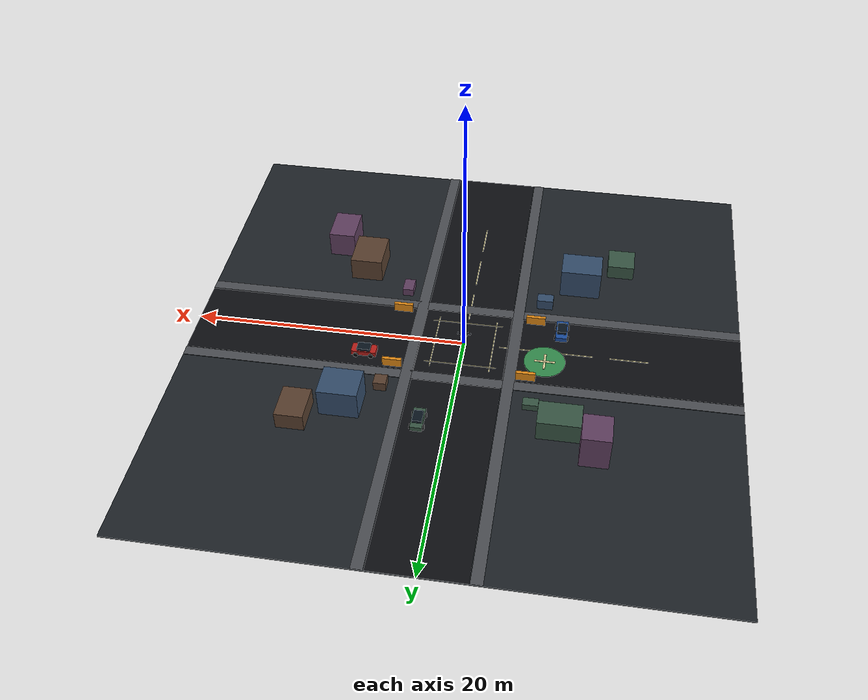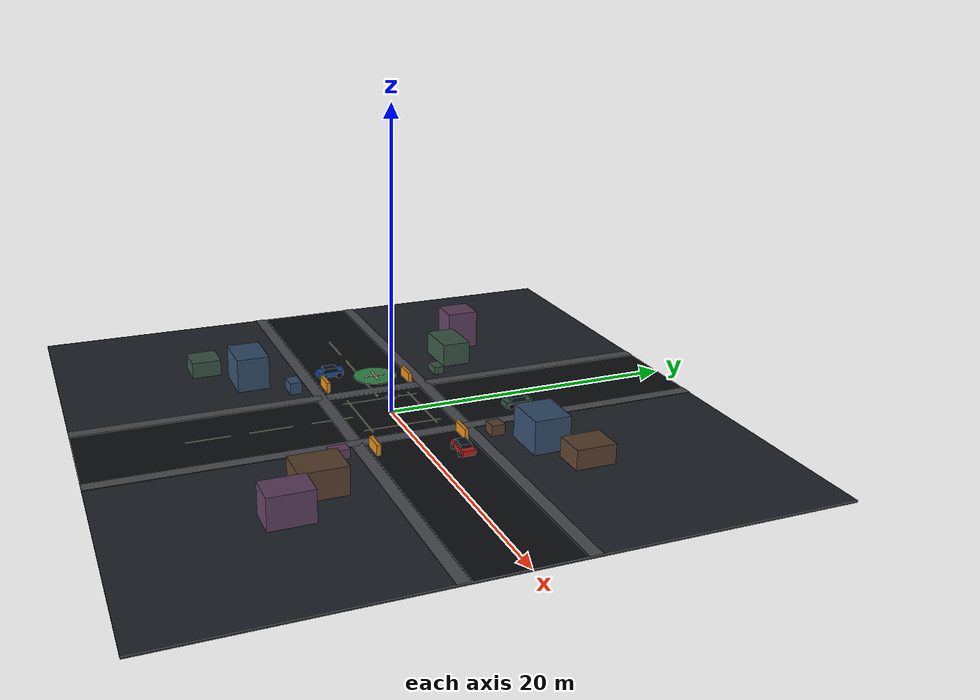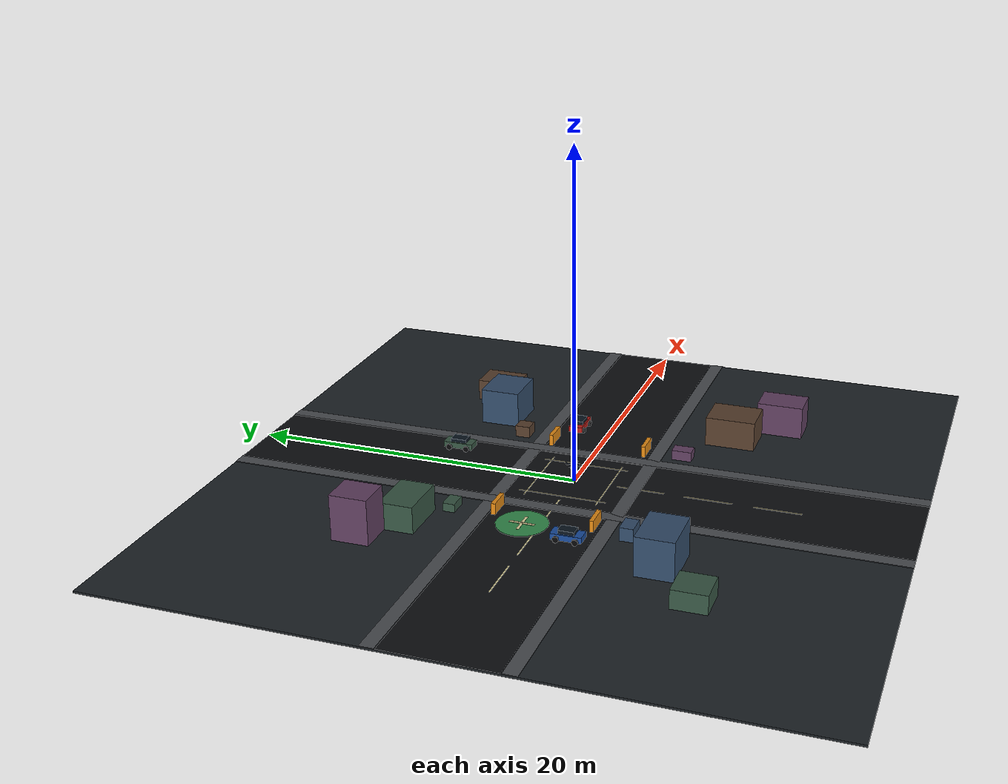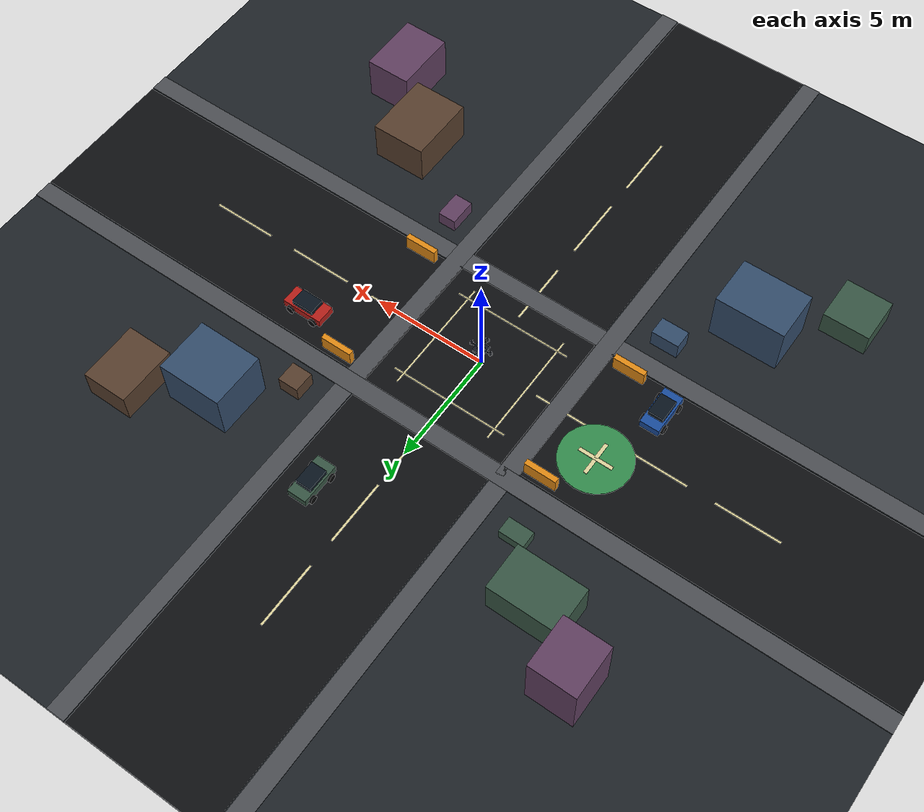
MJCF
<mujoco model="quaternion_quadrotor">

    <!-- ============================================================
         PHYSICS: ORIGINAL SETTINGS PRESERVED
         ============================================================ -->
    <option
        timestep="0.0002"
        gravity="0 0 0"
    />

    <!-- Visual-only materials and lighting. These do not affect physics. -->
    <asset>
        <!-- Drone -->
        <material name="drone_body_mat" rgba="0.08 0.10 0.13 1" />
        <material name="drone_panel_mat" rgba="0.18 0.20 0.24 1" />
        <material name="drone_metal_mat" rgba="0.32 0.35 0.40 1" />
        <material name="drone_glass_mat" rgba="0.03 0.12 0.18 1" />
        <material name="drone_led_mat" rgba="0.10 0.75 1.00 1" emission="0.6" />
        <material name="prop_mat" rgba="0.03 0.04 0.05 0.75" />

        <!-- Environment -->
        <material name="ground_mat" rgba="0.12 0.14 0.16 1" />
        <material name="road_mat" rgba="0.055 0.060 0.070 1" />
        <material name="lane_mat" rgba="0.88 0.84 0.62 1" />
        <material name="sidewalk_mat" rgba="0.30 0.31 0.33 1" />
        <material name="block_a_mat" rgba="0.20 0.30 0.42 1" />
        <material name="block_b_mat" rgba="0.35 0.25 0.18 1" />
        <material name="block_c_mat" rgba="0.22 0.34 0.27 1" />
        <material name="block_d_mat" rgba="0.38 0.25 0.38 1" />
        <material name="car_body_mat" rgba="0.72 0.12 0.10 1" />
        <material name="car_body_2_mat" rgba="0.10 0.30 0.62 1" />
        <material name="car_glass_mat" rgba="0.04 0.08 0.12 1" />
        <material name="wheel_mat" rgba="0.025 0.025 0.028 1" />
        <material name="pad_mat" rgba="0.20 0.55 0.30 1" />
        <material name="barrier_mat" rgba="0.90 0.55 0.08 1" />
    </asset>

    <!-- Rendering only: no effect on dynamics/controller. -->
    <visual>
        <headlight diffuse="0.75 0.78 0.85" ambient="0.30 0.30 0.32" specular="0.35 0.35 0.35" />
        <map znear="0.01" zfar="100" />
    </visual>

    <worldbody>

        <!-- ========================================================
             LIGHTING
             ======================================================== -->
        <light
            name="key_light"
            pos="4 -6 10"
            dir="-0.25 0.35 -1"
            diffuse="0.90 0.90 0.90"
            specular="0.25 0.25 0.25"
        />

        <light
            name="fill_light"
            pos="-6 3 7"
            dir="0.35 -0.20 -1"
            diffuse="0.45 0.50 0.60"
            specular="0.10 0.10 0.10"
        />

        <!-- Large ground slab -->
        <geom
            name="environment_ground"
            type="box"
            pos="0 0 -0.06"
            size="20 20 0.06"
            material="ground_mat"
            contype="0"
            conaffinity="0"
        />

        <!-- Four-way intersection: two perpendicular road slabs -->
        <geom
            name="road_horizontal"
            type="box"
            pos="0 0 0.005"
            size="20 3.2 0.015"
            material="road_mat"
            contype="0"
            conaffinity="0"
        />

        <geom
            name="road_vertical"
            type="box"
            pos="0 0 0.006"
            size="3.2 20 0.015"
            material="road_mat"
            contype="0"
            conaffinity="0"
        />

        <!-- Road edge / sidewalk strips -->
        <geom name="sidewalk_n" type="box" pos="0 3.65 0.02" size="20 0.40 0.02" material="sidewalk_mat" contype="0" conaffinity="0" />
        <geom name="sidewalk_s" type="box" pos="0 -3.65 0.02" size="20 0.40 0.02" material="sidewalk_mat" contype="0" conaffinity="0" />
        <geom name="sidewalk_e" type="box" pos="3.65 0 0.02" size="0.40 20 0.02" material="sidewalk_mat" contype="0" conaffinity="0" />
        <geom name="sidewalk_w" type="box" pos="-3.65 0 0.02" size="0.40 20 0.02" material="sidewalk_mat" contype="0" conaffinity="0" />

        <!-- Dashed center markings on the four road approaches -->
        <geom name="lane_h1" type="box" pos="-12 0 0.026" size="1.4 0.045 0.006" material="lane_mat" contype="0" conaffinity="0" />
        <geom name="lane_h2" type="box" pos="-8 0 0.026" size="1.4 0.045 0.006" material="lane_mat" contype="0" conaffinity="0" />
        <geom name="lane_h3" type="box" pos="-4 0 0.026" size="1.4 0.045 0.006" material="lane_mat" contype="0" conaffinity="0" />
        <geom name="lane_h4" type="box" pos="4 0 0.026" size="1.4 0.045 0.006" material="lane_mat" contype="0" conaffinity="0" />
        <geom name="lane_h5" type="box" pos="8 0 0.026" size="1.4 0.045 0.006" material="lane_mat" contype="0" conaffinity="0" />
        <geom name="lane_h6" type="box" pos="12 0 0.026" size="1.4 0.045 0.006" material="lane_mat" contype="0" conaffinity="0" />

        <geom name="lane_v1" type="box" pos="0 -12 0.026" size="0.045 1.4 0.006" material="lane_mat" contype="0" conaffinity="0" />
        <geom name="lane_v2" type="box" pos="0 -8 0.026" size="0.045 1.4 0.006" material="lane_mat" contype="0" conaffinity="0" />
        <geom name="lane_v3" type="box" pos="0 -4 0.026" size="0.045 1.4 0.006" material="lane_mat" contype="0" conaffinity="0" />
        <geom name="lane_v4" type="box" pos="0 4 0.026" size="0.045 1.4 0.006" material="lane_mat" contype="0" conaffinity="0" />
        <geom name="lane_v5" type="box" pos="0 8 0.026" size="0.045 1.4 0.006" material="lane_mat" contype="0" conaffinity="0" />
        <geom name="lane_v6" type="box" pos="0 12 0.026" size="0.045 1.4 0.006" material="lane_mat" contype="0" conaffinity="0" />

        <!-- Intersection stop lines -->
        <geom name="stop_n" type="box" pos="0 2.15 0.028" size="2.6 0.035 0.007" material="lane_mat" contype="0" conaffinity="0" />
        <geom name="stop_s" type="box" pos="0 -2.15 0.028" size="2.6 0.035 0.007" material="lane_mat" contype="0" conaffinity="0" />
        <geom name="stop_e" type="box" pos="2.15 0 0.028" size="0.035 2.6 0.007" material="lane_mat" contype="0" conaffinity="0" />
        <geom name="stop_w" type="box" pos="-2.15 0 0.028" size="0.035 2.6 0.007" material="lane_mat" contype="0" conaffinity="0" />

        <!-- ========================================================
             SCATTERED LOW-POLY BLOCKS / BUILDINGS
             ======================================================== -->
        <geom name="block_1" type="box" pos="7.5 7.0 1.10" size="1.4 1.2 1.10" material="block_a_mat" contype="0" conaffinity="0" />
        <geom name="block_2" type="box" pos="10.5 8.5 0.65" size="1.0 1.3 0.65" material="block_b_mat" contype="0" conaffinity="0" />
        <geom name="block_3" type="box" pos="-7.5 7.2 0.80" size="1.5 1.0 0.80" material="block_c_mat" contype="0" conaffinity="0" />
        <geom name="block_4" type="box" pos="-10.0 9.0 1.35" size="1.0 1.1 1.35" material="block_d_mat" contype="0" conaffinity="0" />
        <geom name="block_5" type="box" pos="8.5 -7.5 0.90" size="1.2 1.5 0.90" material="block_b_mat" contype="0" conaffinity="0" />
        <geom name="block_6" type="box" pos="-8.0 -7.5 1.15" size="1.5 1.1 1.15" material="block_a_mat" contype="0" conaffinity="0" />
        <geom name="block_7" type="box" pos="-11.0 -10.0 0.55" size="1.0 1.0 0.55" material="block_c_mat" contype="0" conaffinity="0" />
        <geom name="block_8" type="box" pos="11.0 -10.0 1.00" size="1.0 1.4 1.00" material="block_d_mat" contype="0" conaffinity="0" />

        <!-- Smaller scattered obstacles / crates -->
        <geom name="crate_1" type="box" pos="5.2 5.0 0.35" size="0.45 0.45 0.35" material="block_b_mat" contype="0" conaffinity="0" />
        <geom name="crate_2" type="box" pos="-5.4 5.4 0.25" size="0.55 0.35 0.25" material="block_c_mat" contype="0" conaffinity="0" />
        <geom name="crate_3" type="box" pos="5.0 -5.2 0.30" size="0.40 0.60 0.30" material="block_d_mat" contype="0" conaffinity="0" />
        <geom name="crate_4" type="box" pos="-5.5 -5.0 0.40" size="0.60 0.40 0.40" material="block_a_mat" contype="0" conaffinity="0" />

        <!-- ========================================================
             STATIC LOW-POLY CARS
             ======================================================== -->

        <!-- Car 1: north-east approach -->
        <body name="car_1_visual" pos="7.0 2.0 0.34">
            <geom name="car1_body" type="box" size="0.90 0.42 0.18" material="car_body_mat" contype="0" conaffinity="0" />
            <geom name="car1_cabin" type="box" pos="0 0 0.24" size="0.48 0.34 0.16" material="car_glass_mat" contype="0" conaffinity="0" />
            <geom name="car1_wheel_fl" type="cylinder" pos="-0.55 -0.45 -0.12" quat="0.7071 0.7071 0 0" size="0.18 0.07" material="wheel_mat" contype="0" conaffinity="0" />
            <geom name="car1_wheel_fr" type="cylinder" pos="0.55 -0.45 -0.12" quat="0.7071 0.7071 0 0" size="0.18 0.07" material="wheel_mat" contype="0" conaffinity="0" />
            <geom name="car1_wheel_rl" type="cylinder" pos="-0.55 0.45 -0.12" quat="0.7071 0.7071 0 0" size="0.18 0.07" material="wheel_mat" contype="0" conaffinity="0" />
            <geom name="car1_wheel_rr" type="cylinder" pos="0.55 0.45 -0.12" quat="0.7071 0.7071 0 0" size="0.18 0.07" material="wheel_mat" contype="0" conaffinity="0" />
        </body>

        <!-- Car 2: south-west approach -->
        <body name="car_2_visual" pos="-7.0 -2.0 0.34" quat="0.7071 0 0 0.7071">
            <geom name="car2_body" type="box" size="0.90 0.42 0.18" material="car_body_2_mat" contype="0" conaffinity="0" />
            <geom name="car2_cabin" type="box" pos="0 0 0.24" size="0.48 0.34 0.16" material="car_glass_mat" contype="0" conaffinity="0" />
            <geom name="car2_wheel_fl" type="cylinder" pos="-0.55 -0.45 -0.12" quat="0.7071 0.7071 0 0" size="0.18 0.07" material="wheel_mat" contype="0" conaffinity="0" />
            <geom name="car2_wheel_fr" type="cylinder" pos="0.55 -0.45 -0.12" quat="0.7071 0.7071 0 0" size="0.18 0.07" material="wheel_mat" contype="0" conaffinity="0" />
            <geom name="car2_wheel_rl" type="cylinder" pos="-0.55 0.45 -0.12" quat="0.7071 0.7071 0 0" size="0.18 0.07" material="wheel_mat" contype="0" conaffinity="0" />
            <geom name="car2_wheel_rr" type="cylinder" pos="0.55 0.45 -0.12" quat="0.7071 0.7071 0 0" size="0.18 0.07" material="wheel_mat" contype="0" conaffinity="0" />
        </body>

        <!-- Car 3: east side -->
        <body name="car_3_visual" pos="2.0 8.0 0.34" quat="0.7071 0 0 0.7071">
            <geom name="car3_body" type="box" size="0.90 0.42 0.18" material="block_c_mat" contype="0" conaffinity="0" />
            <geom name="car3_cabin" type="box" pos="0 0 0.24" size="0.48 0.34 0.16" material="car_glass_mat" contype="0" conaffinity="0" />
            <geom name="car3_wheel_fl" type="cylinder" pos="-0.55 -0.45 -0.12" quat="0.7071 0.7071 0 0" size="0.18 0.07" material="wheel_mat" contype="0" conaffinity="0" />
            <geom name="car3_wheel_fr" type="cylinder" pos="0.55 -0.45 -0.12" quat="0.7071 0.7071 0 0" size="0.18 0.07" material="wheel_mat" contype="0" conaffinity="0" />
            <geom name="car3_wheel_rl" type="cylinder" pos="-0.55 0.45 -0.12" quat="0.7071 0.7071 0 0" size="0.18 0.07" material="wheel_mat" contype="0" conaffinity="0" />
            <geom name="car3_wheel_rr" type="cylinder" pos="0.55 0.45 -0.12" quat="0.7071 0.7071 0 0" size="0.18 0.07" material="wheel_mat" contype="0" conaffinity="0" />
        </body>

        <!-- ========================================================
             LANDING / ATTITUDE REFERENCE PAD
             ======================================================== -->
        <geom
            name="landing_pad"
            type="cylinder"
            pos="-6 1.0 0.035"
            size="1.5 0.025"
            material="pad_mat"
            contype="0"
            conaffinity="0"
        />
        <geom name="pad_cross_x" type="box" pos="-6 1.0 0.065" size="0.75 0.08 0.01" material="lane_mat" contype="0" conaffinity="0" />
        <geom name="pad_cross_y" type="box" pos="-6 1.0 0.065" size="0.08 0.75 0.01" material="lane_mat" contype="0" conaffinity="0" />

        <!-- Safety barriers -->
        <geom name="barrier_1" type="box" pos="4.8 2.9 0.35" size="0.70 0.12 0.35" material="barrier_mat" contype="0" conaffinity="0" />
        <geom name="barrier_2" type="box" pos="5.0 -2.9 0.35" size="0.70 0.12 0.35" material="barrier_mat" contype="0" conaffinity="0" />
        <geom name="barrier_3" type="box" pos="-4.8 2.9 0.35" size="0.70 0.12 0.35" material="barrier_mat" contype="0" conaffinity="0" />
        <geom name="barrier_4" type="box" pos="-5.0 -2.9 0.35" size="0.70 0.12 0.35" material="barrier_mat" contype="0" conaffinity="0" />

        <body name="quadrotor" pos="0 0 1">

            <freejoint/>

            <!-- EXACT inertia used in the original model -->
            <inertial
                pos="0 0 0"
                mass="1.0"
                diaginertia="0.00065 0.00065 0.0012"
            />

            <!-- ORIGINAL CENTRAL BODY: unchanged physical definition -->
            <geom
                name="body"
                type="box"
                size="0.25 0.25 0.05"
                density="0"
                rgba="0.08 0.10 0.13 1"
            />

            <!-- ORIGINAL X ARM -->
            <geom
                name="arm_x"
                type="capsule"
                fromto="-0.45 0 0 0.45 0 0"
                size="0.025"
                density="0"
                rgba="0.32 0.35 0.40 1"
            />

            <!-- ORIGINAL Y ARM -->
            <geom
                name="arm_y"
                type="capsule"
                fromto="0 -0.45 0 0 0.45 0"
                size="0.025"
                density="0"
                rgba="0.32 0.35 0.40 1"
            />

            <!-- ORIGINAL ROTORS -->
            <geom name="rotor1" type="cylinder" pos="0.45 0 0.03" size="0.08 0.01" density="0" rgba="0.03 0.04 0.05 1" />
            <geom name="rotor2" type="cylinder" pos="-0.45 0 0.03" size="0.08 0.01" density="0" rgba="0.03 0.04 0.05 1" />
            <geom name="rotor3" type="cylinder" pos="0 0.45 0.03" size="0.08 0.01" density="0" rgba="0.03 0.04 0.05 1" />
            <geom name="rotor4" type="cylinder" pos="0 -0.45 0.03" size="0.08 0.01" density="0" rgba="0.03 0.04 0.05 1" />

            <!-- Lower aerodynamic body: flattened ellipsoid -->
            <geom
                name="realistic_lower_body"
                type="ellipsoid"
                pos="0 0 0.015"
                size="0.255 0.145 0.055"
                material="drone_body_mat"
                contype="0"
                conaffinity="0"
            />

            <!-- Raised top shell for a compact consumer-drone silhouette -->
            <geom
                name="realistic_top_shell"
                type="ellipsoid"
                pos="0 0 0.065"
                size="0.205 0.125 0.045"
                material="drone_panel_mat"
                contype="0"
                conaffinity="0"
            />

            <!-- Central top spine / battery cover -->
            <geom
                name="top_battery_cover"
                type="box"
                pos="0 0.015 0.097"
                size="0.105 0.070 0.012"
                material="drone_body_mat"
                contype="0"
                conaffinity="0"
            />

            <!-- Decorative top panel -->
            <geom
                name="top_panel"
                type="box"
                pos="0 0.055 0.110"
                size="0.075 0.045 0.004"
                material="drone_metal_mat"
                contype="0"
                conaffinity="0"
            />

            <!-- Front camera/gimbal assembly -->
            <geom
                name="camera_gimbal"
                type="capsule"
                fromto="0 -0.105 -0.015 0 -0.205 -0.015"
                size="0.025"
                material="drone_metal_mat"
                contype="0"
                conaffinity="0"
            />
            <geom
                name="camera_housing"
                type="ellipsoid"
                pos="0 -0.205 -0.020"
                size="0.075 0.050 0.060"
                material="drone_body_mat"
                contype="0"
                conaffinity="0"
            />
            <geom
                name="camera_lens"
                type="sphere"
                pos="0 -0.252 -0.020"
                size="0.033"
                material="drone_glass_mat"
                contype="0"
                conaffinity="0"
            />
            <geom
                name="camera_lens_ring"
                type="cylinder"
                pos="0 -0.248 -0.020"
                quat="0.7071 0 0 0.7071"
                size="0.041 0.008"
                material="drone_metal_mat"
                contype="0"
                conaffinity="0"
            />

            <!-- Visual arm sleeves following the original four rotor locations -->
            <geom
                name="arm_visual_x_pos"
                type="capsule"
                fromto="0.10 0 0.030 0.47 0 0.045"
                size="0.034"
                material="drone_body_mat"
                contype="0"
                conaffinity="0"
            />
            <geom
                name="arm_visual_x_neg"
                type="capsule"
                fromto="-0.10 0 0.030 -0.47 0 0.045"
                size="0.034"
                material="drone_body_mat"
                contype="0"
                conaffinity="0"
            />
            <geom
                name="arm_visual_y_pos"
                type="capsule"
                fromto="0 0.10 0.030 0 0.47 0.045"
                size="0.034"
                material="drone_body_mat"
                contype="0"
                conaffinity="0"
            />
            <geom
                name="arm_visual_y_neg"
                type="capsule"
                fromto="0 -0.10 0.030 0 -0.47 0.045"
                size="0.034"
                material="drone_body_mat"
                contype="0"
                conaffinity="0"
            />

            <!-- Slim metallic strips on the arms -->
            <geom
                name="arm_cap_x_pos"
                type="capsule"
                fromto="0.14 0 0.060 0.43 0 0.060"
                size="0.010"
                material="drone_metal_mat"
                contype="0"
                conaffinity="0"
            />
            <geom
                name="arm_cap_x_neg"
                type="capsule"
                fromto="-0.14 0 0.060 -0.43 0 0.060"
                size="0.010"
                material="drone_metal_mat"
                contype="0"
                conaffinity="0"
            />
            <geom
                name="arm_cap_y_pos"
                type="capsule"
                fromto="0 0.14 0.060 0 0.43 0.060"
                size="0.010"
                material="drone_metal_mat"
                contype="0"
                conaffinity="0"
            />
            <geom
                name="arm_cap_y_neg"
                type="capsule"
                fromto="0 -0.14 0.060 0 -0.43 0.060"
                size="0.010"
                material="drone_metal_mat"
                contype="0"
                conaffinity="0"
            />

            <!-- Realistic motor pods -->
            <geom name="motor_visual_1" type="cylinder" pos="0.45 0 0.055" size="0.060 0.035" material="drone_metal_mat" contype="0" conaffinity="0" />
            <geom name="motor_visual_2" type="cylinder" pos="-0.45 0 0.055" size="0.060 0.035" material="drone_metal_mat" contype="0" conaffinity="0" />
            <geom name="motor_visual_3" type="cylinder" pos="0 0.45 0.055" size="0.060 0.035" material="drone_metal_mat" contype="0" conaffinity="0" />
            <geom name="motor_visual_4" type="cylinder" pos="0 -0.45 0.055" size="0.060 0.035" material="drone_metal_mat" contype="0" conaffinity="0" />

            <!-- Motor caps -->
            <geom name="motor_cap_1" type="cylinder" pos="0.45 0 0.095" size="0.043 0.010" material="drone_body_mat" contype="0" conaffinity="0" />
            <geom name="motor_cap_2" type="cylinder" pos="-0.45 0 0.095" size="0.043 0.010" material="drone_body_mat" contype="0" conaffinity="0" />
            <geom name="motor_cap_3" type="cylinder" pos="0 0.45 0.095" size="0.043 0.010" material="drone_body_mat" contype="0" conaffinity="0" />
            <geom name="motor_cap_4" type="cylinder" pos="0 -0.45 0.095" size="0.043 0.010" material="drone_body_mat" contype="0" conaffinity="0" />

            <!-- Thin translucent propeller blades. These are visual only. -->
            <geom name="prop_blade_1a" type="box" pos="0.45 0 0.115" size="0.105 0.008 0.003" material="prop_mat" contype="0" conaffinity="0" />
            <geom name="prop_blade_1b" type="box" pos="0.45 0 0.116" size="0.008 0.105 0.003" material="prop_mat" contype="0" conaffinity="0" />
            <geom name="prop_blade_2a" type="box" pos="-0.45 0 0.115" size="0.105 0.008 0.003" material="prop_mat" contype="0" conaffinity="0" />
            <geom name="prop_blade_2b" type="box" pos="-0.45 0 0.116" size="0.008 0.105 0.003" material="prop_mat" contype="0" conaffinity="0" />
            <geom name="prop_blade_3a" type="box" pos="0 0.45 0.115" size="0.105 0.008 0.003" material="prop_mat" contype="0" conaffinity="0" />
            <geom name="prop_blade_3b" type="box" pos="0 0.45 0.116" size="0.008 0.105 0.003" material="prop_mat" contype="0" conaffinity="0" />
            <geom name="prop_blade_4a" type="box" pos="0 -0.45 0.115" size="0.105 0.008 0.003" material="prop_mat" contype="0" conaffinity="0" />
            <geom name="prop_blade_4b" type="box" pos="0 -0.45 0.116" size="0.008 0.105 0.003" material="prop_mat" contype="0" conaffinity="0" />

            <!-- Central propeller hubs -->
            <geom name="hub_1" type="cylinder" pos="0.45 0 0.120" size="0.018 0.010" material="drone_metal_mat" contype="0" conaffinity="0" />
            <geom name="hub_2" type="cylinder" pos="-0.45 0 0.120" size="0.018 0.010" material="drone_metal_mat" contype="0" conaffinity="0" />
            <geom name="hub_3" type="cylinder" pos="0 0.45 0.120" size="0.018 0.010" material="drone_metal_mat" contype="0" conaffinity="0" />
            <geom name="hub_4" type="cylinder" pos="0 -0.45 0.120" size="0.018 0.010" material="drone_metal_mat" contype="0" conaffinity="0" />

            <!-- Landing legs and feet -->
            <geom name="leg_front_left" type="capsule" fromto="-0.14 -0.10 -0.035 -0.20 -0.17 -0.145" size="0.014" material="drone_metal_mat" contype="0" conaffinity="0" />
            <geom name="leg_front_right" type="capsule" fromto="0.14 -0.10 -0.035 0.20 -0.17 -0.145" size="0.014" material="drone_metal_mat" contype="0" conaffinity="0" />
            <geom name="leg_rear_left" type="capsule" fromto="-0.14 0.10 -0.035 -0.20 0.17 -0.145" size="0.014" material="drone_metal_mat" contype="0" conaffinity="0" />
            <geom name="leg_rear_right" type="capsule" fromto="0.14 0.10 -0.035 0.20 0.17 -0.145" size="0.014" material="drone_metal_mat" contype="0" conaffinity="0" />
            <geom name="foot_front_left" type="capsule" fromto="-0.20 -0.17 -0.145 -0.24 -0.17 -0.145" size="0.012" material="drone_body_mat" contype="0" conaffinity="0" />
            <geom name="foot_front_right" type="capsule" fromto="0.20 -0.17 -0.145 0.24 -0.17 -0.145" size="0.012" material="drone_body_mat" contype="0" conaffinity="0" />
            <geom name="foot_rear_left" type="capsule" fromto="-0.20 0.17 -0.145 -0.24 0.17 -0.145" size="0.012" material="drone_body_mat" contype="0" conaffinity="0" />
            <geom name="foot_rear_right" type="capsule" fromto="0.20 0.17 -0.145 0.24 0.17 -0.145" size="0.012" material="drone_body_mat" contype="0" conaffinity="0" />

            <!-- Navigation LEDs -->
            <geom name="led_front" type="sphere" pos="0 -0.235 0.045" size="0.012" material="drone_led_mat" contype="0" conaffinity="0" />
            <geom name="led_left" type="sphere" pos="-0.235 0 0.070" size="0.014" material="drone_led_mat" contype="0" conaffinity="0" />
            <geom name="led_right" type="sphere" pos="0.235 0 0.070" size="0.014" material="drone_led_mat" contype="0" conaffinity="0" />
            <geom name="led_rear" type="sphere" pos="0 0.235 0.070" size="0.010" material="drone_led_mat" contype="0" conaffinity="0" />

        </body>

    </worldbody>

</mujoco>
